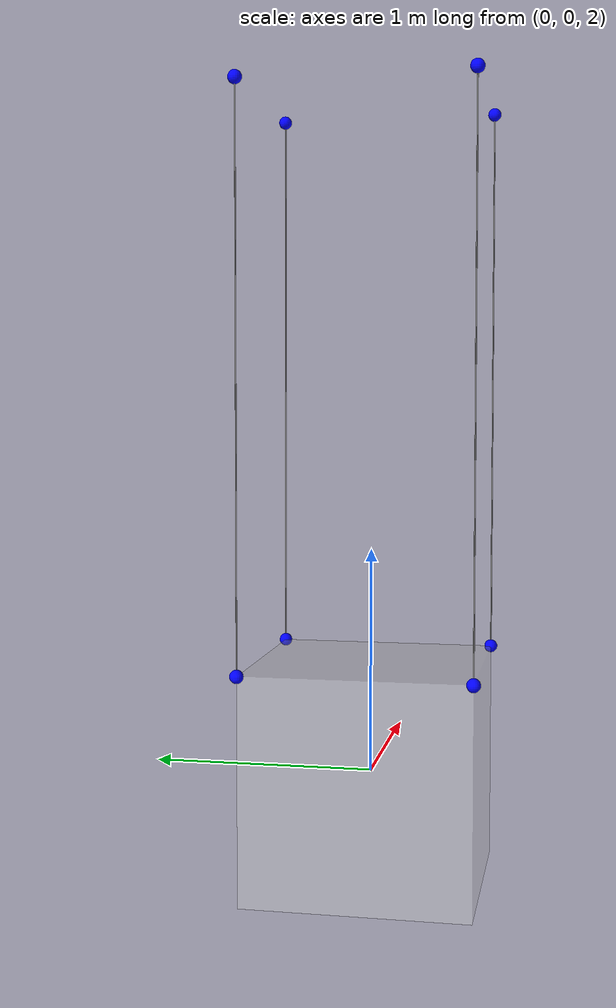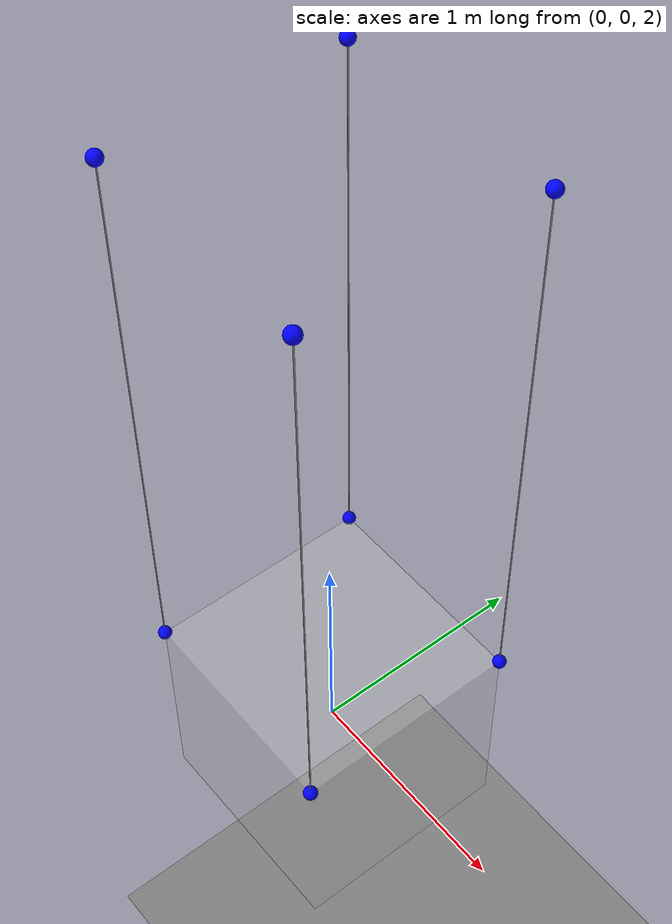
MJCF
<mujoco>
  <option gravity="0 0 -9.81" />
  <worldbody>
    <geom type="plane" size="10 10 0.1" />
    <light pos="0 0 10" />
    <site name="anchor1" pos="0.5 0.5 5" size="0.03" rgba="0 0 1 1" />
    <site name="anchor2" pos="0.5 -0.5 5" size="0.03" rgba="0 0 1 1" />
    <site name="anchor3" pos="-0.5 0.5 5" size="0.03" rgba="0 0 1 1" />
    <site name="anchor4" pos="-0.5 -0.5 5" size="0.03" rgba="0 0 1 1" />
    <body name="box" pos="0 0 2">
      <freejoint />
      <geom type="box" mass="1" size=".5 .5 .5" rgba="0.8 0.8 0.8 0.3"/>
      <site name="a1" pos=".5 .5 .5" rgba="0 0 1 1" size="0.03" />
      <site name="a2" pos=".5 -.5 .5" rgba="0 0 1 1" size="0.03" />
      <site name="a3" pos="-.5 .5 .5" rgba="0 0 1 1" size="0.03" />
      <site name="a4" pos="-.5 -.5 .5" rgba="0 0 1 1" size="0.03" />
    </body>
  </worldbody>
  <tendon>
    <spatial name="tendon1" limited="true" range="0 1" damping="100">
      <site site="anchor1" />
      <site site="a1" />
    </spatial>
    <spatial name="tendon2" limited="true" range="0 1" damping="100" >
      <site site="anchor2" />
      <site site="a2" />
    </spatial>
    <spatial name="tendon3" limited="true" range="0 1" damping="100">
      <site site="anchor3" />
      <site site="a3" />
    </spatial>
    <spatial name="tendon4" limited="true" range="0 1" damping="100">
      <site site="anchor4" />
      <site site="a4" />
    </spatial>
  </tendon>
  <actuator>
    <motor name="tendon11" tendon="tendon1" ctrllimited="true" ctrlrange="-6 2" gear="4" />
    <motor name="tendon22" tendon="tendon2" ctrllimited="true" ctrlrange="-6 2" gear="4" />
    <motor name="tendon33" tendon="tendon3" ctrllimited="true" ctrlrange="-6 2" gear="4" />
    <motor name="tendon44" tendon="tendon4" ctrllimited="true" ctrlrange="-6 2" gear="4" />
  </actuator>

  <sensor>
    <tendonlimitfrc tendon="tendon1" />
    <tendonlimitfrc tendon="tendon2" />
    <tendonlimitfrc tendon="tendon3" />
    <tendonlimitfrc tendon="tendon4" />
  </sensor>
</mujoco>
